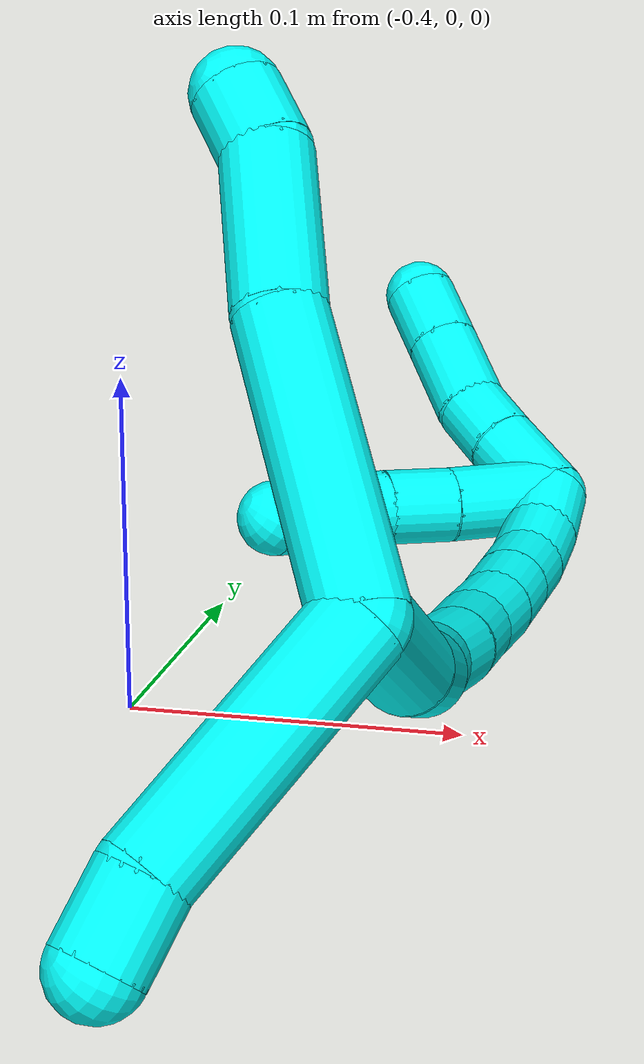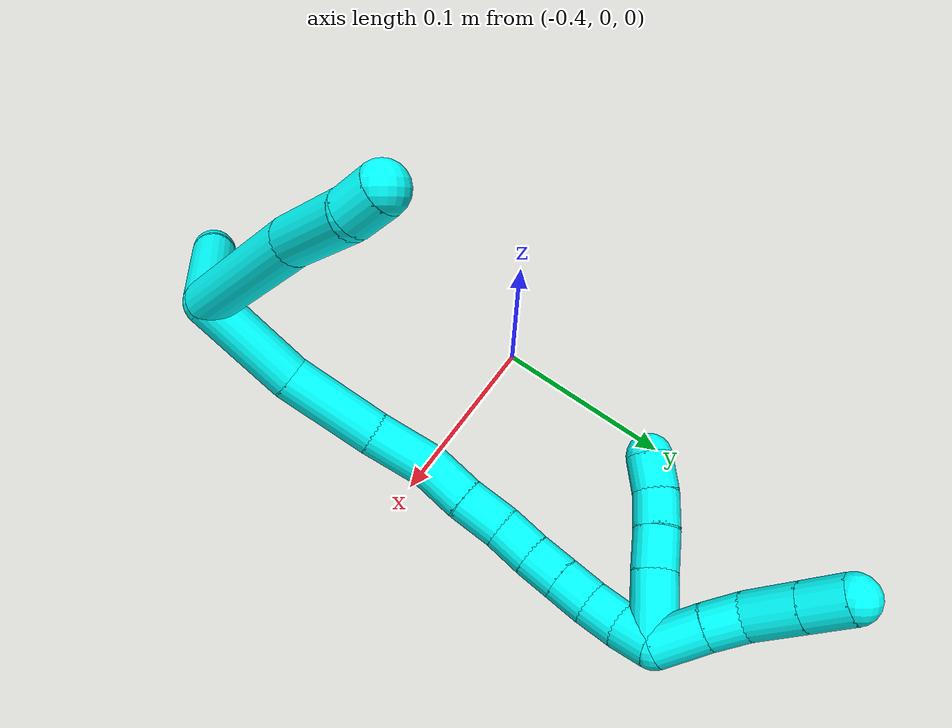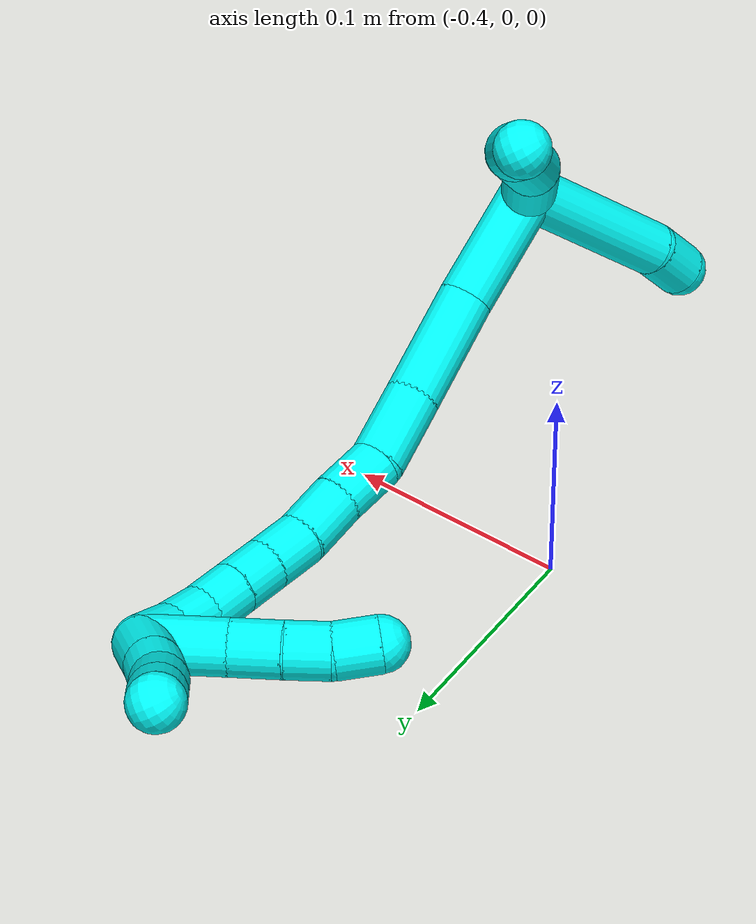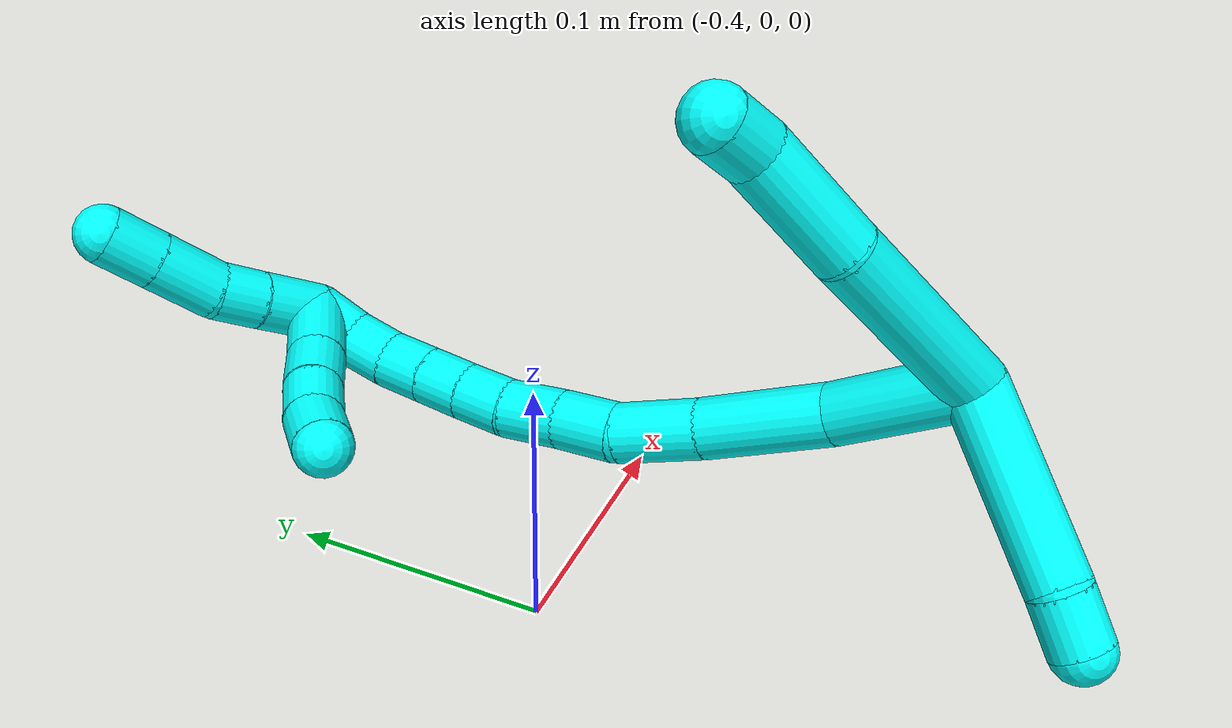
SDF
<sdf version="1.7">
 <world name="default">
  <model name="3">
   <static>0</static>
   <link name="3">
    <collision name="collision-cylinder-e_1_2_8">
     <pose>-0.01954 0.033205 0.014743 -1.15293 -0.493468 0.32461</pose>
     <geometry><cylinder><radius>0.0125</radius><length>0.082504</length></cylinder></geometry>
     <surface>
      <friction><ode><mu>1.16</mu><mu2>1.16</mu2><slip1>0</slip1><slip2>0</slip2></ode></friction>
      <contact><ode><kp>1e+06</kp><kd>1</kd><max_vel>0</max_vel><min_depth>0.001</min_depth></ode></contact>
     </surface>
    </collision>
    <visual name="visual-cylinder-e_1_2_8">
     <pose>-0.01954 0.033205 0.014743 -1.15293 -0.493468 0.32461</pose>
     <geometry><cylinder><radius>0.0125</radius><length>0.082504</length></cylinder></geometry>
     <material><ambient>0.003922 1 0.996078 1</ambient></material>
    </visual>
    <collision name="collision-cylinder-e_2_8_9">
     <pose>-0.049419 0.087174 0.034522 -1.33288 -0.450634 0.356702</pose>
     <geometry><cylinder><radius>0.0125</radius><length>0.047472</length></cylinder></geometry>
     <surface>
      <friction><ode><mu>1.16</mu><mu2>1.16</mu2><slip1>0</slip1><slip2>0</slip2></ode></friction>
      <contact><ode><kp>1e+06</kp><kd>1</kd><max_vel>0</max_vel><min_depth>0.001</min_depth></ode></contact>
     </surface>
    </collision>
    <visual name="visual-cylinder-e_2_8_9">
     <pose>-0.049419 0.087174 0.034522 -1.33288 -0.450634 0.356702</pose>
     <geometry><cylinder><radius>0.0125</radius><length>0.047472</length></cylinder></geometry>
     <material><ambient>0.003922 1 0.996078 1</ambient></material>
    </visual>
    <collision name="collision-cylinder-e_3_9_6">
     <pose>-0.065431 0.114843 0.04407 -0.99196 -0.602613 0.333193</pose>
     <geometry><cylinder><radius>0.0125</radius><length>0.020024</length></cylinder></geometry>
     <surface>
      <friction><ode><mu>1.16</mu><mu2>1.16</mu2><slip1>0</slip1><slip2>0</slip2></ode></friction>
      <contact><ode><kp>1e+06</kp><kd>1</kd><max_vel>0</max_vel><min_depth>0.001</min_depth></ode></contact>
     </surface>
    </collision>
    <visual name="visual-cylinder-e_3_9_6">
     <pose>-0.065431 0.114843 0.04407 -0.99196 -0.602613 0.333193</pose>
     <geometry><cylinder><radius>0.0125</radius><length>0.020024</length></cylinder></geometry>
     <material><ambient>0.003922 1 0.996078 1</ambient></material>
    </visual>
    <collision name="collision-cylinder-e_1_2_10">
     <pose>-0.002717 -0.036202 0.012964 1.22691 -0.070537 -0.049674</pose>
     <geometry><cylinder><radius>0.0125</radius><length>0.077097</length></cylinder></geometry>
     <surface>
      <friction><ode><mu>1.16</mu><mu2>1.16</mu2><slip1>0</slip1><slip2>0</slip2></ode></friction>
      <contact><ode><kp>1e+06</kp><kd>1</kd><max_vel>0</max_vel><min_depth>0.001</min_depth></ode></contact>
     </surface>
    </collision>
    <visual name="visual-cylinder-e_1_2_10">
     <pose>-0.002717 -0.036202 0.012964 1.22691 -0.070537 -0.049674</pose>
     <geometry><cylinder><radius>0.0125</radius><length>0.077097</length></cylinder></geometry>
     <material><ambient>0.003922 1 0.996078 1</ambient></material>
    </visual>
    <collision name="collision-cylinder-e_2_10_5">
     <pose>-0.005654 -0.083784 0.027173 1.46186 -0.01926 -0.017268</pose>
     <geometry><cylinder><radius>0.0125</radius><length>0.022903</length></cylinder></geometry>
     <surface>
      <friction><ode><mu>1.16</mu><mu2>1.16</mu2><slip1>0</slip1><slip2>0</slip2></ode></friction>
      <contact><ode><kp>1e+06</kp><kd>1</kd><max_vel>0</max_vel><min_depth>0.001</min_depth></ode></contact>
     </surface>
    </collision>
    <visual name="visual-cylinder-e_2_10_5">
     <pose>-0.005654 -0.083784 0.027173 1.46186 -0.01926 -0.017268</pose>
     <geometry><cylinder><radius>0.0125</radius><length>0.022903</length></cylinder></geometry>
     <material><ambient>0.003922 1 0.996078 1</ambient></material>
    </visual>
    <collision name="collision-cylinder-e_1_2_11">
     <pose>-0.020248 0.000561 -0.020168 -3.11377 -0.78717 3.07461</pose>
     <geometry><cylinder><radius>0.0125</radius><length>0.057168</length></cylinder></geometry>
     <surface>
      <friction><ode><mu>1.16</mu><mu2>1.16</mu2><slip1>0</slip1><slip2>0</slip2></ode></friction>
      <contact><ode><kp>1e+06</kp><kd>1</kd><max_vel>0</max_vel><min_depth>0.001</min_depth></ode></contact>
     </surface>
    </collision>
    <visual name="visual-cylinder-e_1_2_11">
     <pose>-0.020248 0.000561 -0.020168 -3.11377 -0.78717 3.07461</pose>
     <geometry><cylinder><radius>0.0125</radius><length>0.057168</length></cylinder></geometry>
     <material><ambient>0.003922 1 0.996078 1</ambient></material>
    </visual>
    <collision name="collision-cylinder-e_2_11_12">
     <pose>-0.061843 0.005003 -0.055981 -2.89846 -0.924063 2.66044</pose>
     <geometry><cylinder><radius>0.0125</radius><length>0.053497</length></cylinder></geometry>
     <surface>
      <friction><ode><mu>1.16</mu><mu2>1.16</mu2><slip1>0</slip1><slip2>0</slip2></ode></friction>
      <contact><ode><kp>1e+06</kp><kd>1</kd><max_vel>0</max_vel><min_depth>0.001</min_depth></ode></contact>
     </surface>
    </collision>
    <visual name="visual-cylinder-e_2_11_12">
     <pose>-0.061843 0.005003 -0.055981 -2.89846 -0.924063 2.66044</pose>
     <geometry><cylinder><radius>0.0125</radius><length>0.053497</length></cylinder></geometry>
     <material><ambient>0.003922 1 0.996078 1</ambient></material>
    </visual>
    <collision name="collision-cylinder-e_3_12_13">
     <pose>-0.097875 0.012804 -0.081148 -2.75104 -0.959232 2.4148</pose>
     <geometry><cylinder><radius>0.0125</radius><length>0.035874</length></cylinder></geometry>
     <surface>
      <friction><ode><mu>1.16</mu><mu2>1.16</mu2><slip1>0</slip1><slip2>0</slip2></ode></friction>
      <contact><ode><kp>1e+06</kp><kd>1</kd><max_vel>0</max_vel><min_depth>0.001</min_depth></ode></contact>
     </surface>
    </collision>
    <visual name="visual-cylinder-e_3_12_13">
     <pose>-0.097875 0.012804 -0.081148 -2.75104 -0.959232 2.4148</pose>
     <geometry><cylinder><radius>0.0125</radius><length>0.035874</length></cylinder></geometry>
     <material><ambient>0.003922 1 0.996078 1</ambient></material>
    </visual>
    <collision name="collision-cylinder-e_4_13_14">
     <pose>-0.120864 0.022153 -0.099146 -2.5719 -0.689778 1.77387</pose>
     <geometry><cylinder><radius>0.0125</radius><length>0.026095</length></cylinder></geometry>
     <surface>
      <friction><ode><mu>1.16</mu><mu2>1.16</mu2><slip1>0</slip1><slip2>0</slip2></ode></friction>
      <contact><ode><kp>1e+06</kp><kd>1</kd><max_vel>0</max_vel><min_depth>0.001</min_depth></ode></contact>
     </surface>
    </collision>
    <visual name="visual-cylinder-e_4_13_14">
     <pose>-0.120864 0.022153 -0.099146 -2.5719 -0.689778 1.77387</pose>
     <geometry><cylinder><radius>0.0125</radius><length>0.026095</length></cylinder></geometry>
     <material><ambient>0.003922 1 0.996078 1</ambient></material>
    </visual>
    <collision name="collision-cylinder-e_5_14_15">
     <pose>-0.138216 0.033002 -0.11502 -2.50935 -0.778639 1.79543</pose>
     <geometry><cylinder><radius>0.0125</radius><length>0.025768</length></cylinder></geometry>
     <surface>
      <friction><ode><mu>1.16</mu><mu2>1.16</mu2><slip1>0</slip1><slip2>0</slip2></ode></friction>
      <contact><ode><kp>1e+06</kp><kd>1</kd><max_vel>0</max_vel><min_depth>0.001</min_depth></ode></contact>
     </surface>
    </collision>
    <visual name="visual-cylinder-e_5_14_15">
     <pose>-0.138216 0.033002 -0.11502 -2.50935 -0.778639 1.79543</pose>
     <geometry><cylinder><radius>0.0125</radius><length>0.025768</length></cylinder></geometry>
     <material><ambient>0.003922 1 0.996078 1</ambient></material>
    </visual>
    <collision name="collision-cylinder-e_6_15_16">
     <pose>-0.153663 0.044194 -0.128919 -2.41544 -0.634588 1.42555</pose>
     <geometry><cylinder><radius>0.0125</radius><length>0.021587</length></cylinder></geometry>
     <surface>
      <friction><ode><mu>1.16</mu><mu2>1.16</mu2><slip1>0</slip1><slip2>0</slip2></ode></friction>
      <contact><ode><kp>1e+06</kp><kd>1</kd><max_vel>0</max_vel><min_depth>0.001</min_depth></ode></contact>
     </surface>
    </collision>
    <visual name="visual-cylinder-e_6_15_16">
     <pose>-0.153663 0.044194 -0.128919 -2.41544 -0.634588 1.42555</pose>
     <geometry><cylinder><radius>0.0125</radius><length>0.021587</length></cylinder></geometry>
     <material><ambient>0.003922 1 0.996078 1</ambient></material>
    </visual>
    <collision name="collision-cylinder-e_7_16_17">
     <pose>-0.166156 0.055774 -0.140817 -2.31959 -0.655221 1.32461</pose>
     <geometry><cylinder><radius>0.0125</radius><length>0.020002</length></cylinder></geometry>
     <surface>
      <friction><ode><mu>1.16</mu><mu2>1.16</mu2><slip1>0</slip1><slip2>0</slip2></ode></friction>
      <contact><ode><kp>1e+06</kp><kd>1</kd><max_vel>0</max_vel><min_depth>0.001</min_depth></ode></contact>
     </surface>
    </collision>
    <visual name="visual-cylinder-e_7_16_17">
     <pose>-0.166156 0.055774 -0.140817 -2.31959 -0.655221 1.32461</pose>
     <geometry><cylinder><radius>0.0125</radius><length>0.020002</length></cylinder></geometry>
     <material><ambient>0.003922 1 0.996078 1</ambient></material>
    </visual>
    <collision name="collision-cylinder-e_8_17_18">
     <pose>-0.178345 0.067394 -0.151612 -2.31924 -0.655246 1.32419</pose>
     <geometry><cylinder><radius>0.0125</radius><length>0.020003</length></cylinder></geometry>
     <surface>
      <friction><ode><mu>1.16</mu><mu2>1.16</mu2><slip1>0</slip1><slip2>0</slip2></ode></friction>
      <contact><ode><kp>1e+06</kp><kd>1</kd><max_vel>0</max_vel><min_depth>0.001</min_depth></ode></contact>
     </surface>
    </collision>
    <visual name="visual-cylinder-e_8_17_18">
     <pose>-0.178345 0.067394 -0.151612 -2.31924 -0.655246 1.32419</pose>
     <geometry><cylinder><radius>0.0125</radius><length>0.020003</length></cylinder></geometry>
     <material><ambient>0.003922 1 0.996078 1</ambient></material>
    </visual>
    <collision name="collision-cylinder-e_9_18_19">
     <pose>-0.190143 0.080272 -0.161195 -2.10565 -0.606932 1.0049</pose>
     <geometry><cylinder><radius>0.0125</radius><length>0.020001</length></cylinder></geometry>
     <surface>
      <friction><ode><mu>1.16</mu><mu2>1.16</mu2><slip1>0</slip1><slip2>0</slip2></ode></friction>
      <contact><ode><kp>1e+06</kp><kd>1</kd><max_vel>0</max_vel><min_depth>0.001</min_depth></ode></contact>
     </surface>
    </collision>
    <visual name="visual-cylinder-e_9_18_19">
     <pose>-0.190143 0.080272 -0.161195 -2.10565 -0.606932 1.0049</pose>
     <geometry><cylinder><radius>0.0125</radius><length>0.020001</length></cylinder></geometry>
     <material><ambient>0.003922 1 0.996078 1</ambient></material>
    </visual>
    <collision name="collision-cylinder-e_10_19_1">
     <pose>-0.201002 0.095501 -0.167999 -1.88111 -0.541492 0.727148</pose>
     <geometry><cylinder><radius>0.0125</radius><length>0.020004</length></cylinder></geometry>
     <surface>
      <friction><ode><mu>1.16</mu><mu2>1.16</mu2><slip1>0</slip1><slip2>0</slip2></ode></friction>
      <contact><ode><kp>1e+06</kp><kd>1</kd><max_vel>0</max_vel><min_depth>0.001</min_depth></ode></contact>
     </surface>
    </collision>
    <visual name="visual-cylinder-e_10_19_1">
     <pose>-0.201002 0.095501 -0.167999 -1.88111 -0.541492 0.727148</pose>
     <geometry><cylinder><radius>0.0125</radius><length>0.020004</length></cylinder></geometry>
     <material><ambient>0.003922 1 0.996078 1</ambient></material>
    </visual>
    <collision name="collision-cylinder-e_1_1_20">
     <pose>-0.210153 0.095023 -0.154885 0.502207 -0.219082 -0.056409</pose>
     <geometry><cylinder><radius>0.0125</radius><length>0.036775</length></cylinder></geometry>
     <surface>
      <friction><ode><mu>1.16</mu><mu2>1.16</mu2><slip1>0</slip1><slip2>0</slip2></ode></friction>
      <contact><ode><kp>1e+06</kp><kd>1</kd><max_vel>0</max_vel><min_depth>0.001</min_depth></ode></contact>
     </surface>
    </collision>
    <visual name="visual-cylinder-e_1_1_20">
     <pose>-0.210153 0.095023 -0.154885 0.502207 -0.219082 -0.056409</pose>
     <geometry><cylinder><radius>0.0125</radius><length>0.036775</length></cylinder></geometry>
     <material><ambient>0.003922 1 0.996078 1</ambient></material>
    </visual>
    <collision name="collision-cylinder-e_2_20_21">
     <pose>-0.216941 0.081513 -0.129235 0.456479 -0.247479 -0.057765</pose>
     <geometry><cylinder><radius>0.0125</radius><length>0.022793</length></cylinder></geometry>
     <surface>
      <friction><ode><mu>1.16</mu><mu2>1.16</mu2><slip1>0</slip1><slip2>0</slip2></ode></friction>
      <contact><ode><kp>1e+06</kp><kd>1</kd><max_vel>0</max_vel><min_depth>0.001</min_depth></ode></contact>
     </surface>
    </collision>
    <visual name="visual-cylinder-e_2_20_21">
     <pose>-0.216941 0.081513 -0.129235 0.456479 -0.247479 -0.057765</pose>
     <geometry><cylinder><radius>0.0125</radius><length>0.022793</length></cylinder></geometry>
     <material><ambient>0.003922 1 0.996078 1</ambient></material>
    </visual>
    <collision name="collision-cylinder-e_3_21_22">
     <pose>-0.22165 0.071731 -0.110764 0.521326 -0.191931 -0.05134</pose>
     <geometry><cylinder><radius>0.0125</radius><length>0.020095</length></cylinder></geometry>
     <surface>
      <friction><ode><mu>1.16</mu><mu2>1.16</mu2><slip1>0</slip1><slip2>0</slip2></ode></friction>
      <contact><ode><kp>1e+06</kp><kd>1</kd><max_vel>0</max_vel><min_depth>0.001</min_depth></ode></contact>
     </surface>
    </collision>
    <visual name="visual-cylinder-e_3_21_22">
     <pose>-0.22165 0.071731 -0.110764 0.521326 -0.191931 -0.05134</pose>
     <geometry><cylinder><radius>0.0125</radius><length>0.020095</length></cylinder></geometry>
     <material><ambient>0.003922 1 0.996078 1</ambient></material>
    </visual>
    <collision name="collision-cylinder-e_4_22_4">
     <pose>-0.223677 0.062154 -0.093177 0.476645 -0.01089 -0.002646</pose>
     <geometry><cylinder><radius>0.0125</radius><length>0.020337</length></cylinder></geometry>
     <surface>
      <friction><ode><mu>1.16</mu><mu2>1.16</mu2><slip1>0</slip1><slip2>0</slip2></ode></friction>
      <contact><ode><kp>1e+06</kp><kd>1</kd><max_vel>0</max_vel><min_depth>0.001</min_depth></ode></contact>
     </surface>
    </collision>
    <visual name="visual-cylinder-e_4_22_4">
     <pose>-0.223677 0.062154 -0.093177 0.476645 -0.01089 -0.002646</pose>
     <geometry><cylinder><radius>0.0125</radius><length>0.020337</length></cylinder></geometry>
     <material><ambient>0.003922 1 0.996078 1</ambient></material>
    </visual>
    <collision name="collision-cylinder-e_1_1_23">
     <pose>-0.216665 0.110774 -0.164482 -0.858973 -0.841432 0.40425</pose>
     <geometry><cylinder><radius>0.0125</radius><length>0.028186</length></cylinder></geometry>
     <surface>
      <friction><ode><mu>1.16</mu><mu2>1.16</mu2><slip1>0</slip1><slip2>0</slip2></ode></friction>
      <contact><ode><kp>1e+06</kp><kd>1</kd><max_vel>0</max_vel><min_depth>0.001</min_depth></ode></contact>
     </surface>
    </collision>
    <visual name="visual-cylinder-e_1_1_23">
     <pose>-0.216665 0.110774 -0.164482 -0.858973 -0.841432 0.40425</pose>
     <geometry><cylinder><radius>0.0125</radius><length>0.028186</length></cylinder></geometry>
     <material><ambient>0.003922 1 0.996078 1</ambient></material>
    </visual>
    <collision name="collision-cylinder-e_2_23_24">
     <pose>-0.234761 0.12318 -0.154489 -0.941085 -0.858576 0.457526</pose>
     <geometry><cylinder><radius>0.0125</radius><length>0.020051</length></cylinder></geometry>
     <surface>
      <friction><ode><mu>1.16</mu><mu2>1.16</mu2><slip1>0</slip1><slip2>0</slip2></ode></friction>
      <contact><ode><kp>1e+06</kp><kd>1</kd><max_vel>0</max_vel><min_depth>0.001</min_depth></ode></contact>
     </surface>
    </collision>
    <visual name="visual-cylinder-e_2_23_24">
     <pose>-0.234761 0.12318 -0.154489 -0.941085 -0.858576 0.457526</pose>
     <geometry><cylinder><radius>0.0125</radius><length>0.020051</length></cylinder></geometry>
     <material><ambient>0.003922 1 0.996078 1</ambient></material>
    </visual>
    <collision name="collision-cylinder-e_3_24_25">
     <pose>-0.25108 0.138653 -0.145658 -1.11639 -0.656649 0.419187</pose>
     <geometry><cylinder><radius>0.0125</radius><length>0.028603</length></cylinder></geometry>
     <surface>
      <friction><ode><mu>1.16</mu><mu2>1.16</mu2><slip1>0</slip1><slip2>0</slip2></ode></friction>
      <contact><ode><kp>1e+06</kp><kd>1</kd><max_vel>0</max_vel><min_depth>0.001</min_depth></ode></contact>
     </surface>
    </collision>
    <visual name="visual-cylinder-e_3_24_25">
     <pose>-0.25108 0.138653 -0.145658 -1.11639 -0.656649 0.419187</pose>
     <geometry><cylinder><radius>0.0125</radius><length>0.028603</length></cylinder></geometry>
     <material><ambient>0.003922 1 0.996078 1</ambient></material>
    </visual>
    <collision name="collision-cylinder-e_4_25_3">
     <pose>-0.26688 0.15706 -0.136638 -1.11359 -0.656728 0.417972</pose>
     <geometry><cylinder><radius>0.0125</radius><length>0.02316</length></cylinder></geometry>
     <surface>
      <friction><ode><mu>1.16</mu><mu2>1.16</mu2><slip1>0</slip1><slip2>0</slip2></ode></friction>
      <contact><ode><kp>1e+06</kp><kd>1</kd><max_vel>0</max_vel><min_depth>0.001</min_depth></ode></contact>
     </surface>
    </collision>
    <visual name="visual-cylinder-e_4_25_3">
     <pose>-0.26688 0.15706 -0.136638 -1.11359 -0.656728 0.417972</pose>
     <geometry><cylinder><radius>0.0125</radius><length>0.02316</length></cylinder></geometry>
     <material><ambient>0.003922 1 0.996078 1</ambient></material>
    </visual>
    <collision name="collision-sphere-3">
     <pose>-0.27395 0.165289 -0.132589 0 -0 0</pose>
     <geometry><sphere><radius>0.0125</radius></sphere></geometry>
     <surface>
      <friction><ode><mu>1.16</mu><mu2>1.16</mu2><slip1>0</slip1><slip2>0</slip2></ode></friction>
      <contact><ode><kp>1e+06</kp><kd>1</kd><max_vel>0</max_vel><min_depth>0.001</min_depth></ode></contact>
     </surface>
    </collision>
    <visual name="visual-sphere-3">
     <pose>-0.27395 0.165289 -0.132589 0 -0 0</pose>
     <geometry><sphere><radius>0.0125</radius></sphere></geometry>
     <material><ambient>0.003922 1 0.996078 1</ambient></material>
    </visual>
    <collision name="collision-sphere-25">
     <pose>-0.25981 0.148831 -0.140687 0 -0 0</pose>
     <geometry><sphere><radius>0.0125</radius></sphere></geometry>
     <surface>
      <friction><ode><mu>1.16</mu><mu2>1.16</mu2><slip1>0</slip1><slip2>0</slip2></ode></friction>
      <contact><ode><kp>1e+06</kp><kd>1</kd><max_vel>0</max_vel><min_depth>0.001</min_depth></ode></contact>
     </surface>
    </collision>
    <visual name="visual-sphere-25">
     <pose>-0.25981 0.148831 -0.140687 0 -0 0</pose>
     <geometry><sphere><radius>0.0125</radius></sphere></geometry>
     <material><ambient>0.003922 1 0.996078 1</ambient></material>
    </visual>
    <collision name="collision-sphere-24">
     <pose>-0.242349 0.128475 -0.15063 0 -0 0</pose>
     <geometry><sphere><radius>0.0125</radius></sphere></geometry>
     <surface>
      <friction><ode><mu>1.16</mu><mu2>1.16</mu2><slip1>0</slip1><slip2>0</slip2></ode></friction>
      <contact><ode><kp>1e+06</kp><kd>1</kd><max_vel>0</max_vel><min_depth>0.001</min_depth></ode></contact>
     </surface>
    </collision>
    <visual name="visual-sphere-24">
     <pose>-0.242349 0.128475 -0.15063 0 -0 0</pose>
     <geometry><sphere><radius>0.0125</radius></sphere></geometry>
     <material><ambient>0.003922 1 0.996078 1</ambient></material>
    </visual>
    <collision name="collision-sphere-23">
     <pose>-0.227173 0.117885 -0.158347 0 -0 0</pose>
     <geometry><sphere><radius>0.0125</radius></sphere></geometry>
     <surface>
      <friction><ode><mu>1.16</mu><mu2>1.16</mu2><slip1>0</slip1><slip2>0</slip2></ode></friction>
      <contact><ode><kp>1e+06</kp><kd>1</kd><max_vel>0</max_vel><min_depth>0.001</min_depth></ode></contact>
     </surface>
    </collision>
    <visual name="visual-sphere-23">
     <pose>-0.227173 0.117885 -0.158347 0 -0 0</pose>
     <geometry><sphere><radius>0.0125</radius></sphere></geometry>
     <material><ambient>0.003922 1 0.996078 1</ambient></material>
    </visual>
    <collision name="collision-sphere-4">
     <pose>-0.223788 0.057489 -0.084142 0 -0 0</pose>
     <geometry><sphere><radius>0.0125</radius></sphere></geometry>
     <surface>
      <friction><ode><mu>1.16</mu><mu2>1.16</mu2><slip1>0</slip1><slip2>0</slip2></ode></friction>
      <contact><ode><kp>1e+06</kp><kd>1</kd><max_vel>0</max_vel><min_depth>0.001</min_depth></ode></contact>
     </surface>
    </collision>
    <visual name="visual-sphere-4">
     <pose>-0.223788 0.057489 -0.084142 0 -0 0</pose>
     <geometry><sphere><radius>0.0125</radius></sphere></geometry>
     <material><ambient>0.003922 1 0.996078 1</ambient></material>
    </visual>
    <collision name="collision-sphere-22">
     <pose>-0.223566 0.066819 -0.102211 0 -0 0</pose>
     <geometry><sphere><radius>0.0125</radius></sphere></geometry>
     <surface>
      <friction><ode><mu>1.16</mu><mu2>1.16</mu2><slip1>0</slip1><slip2>0</slip2></ode></friction>
      <contact><ode><kp>1e+06</kp><kd>1</kd><max_vel>0</max_vel><min_depth>0.001</min_depth></ode></contact>
     </surface>
    </collision>
    <visual name="visual-sphere-22">
     <pose>-0.223566 0.066819 -0.102211 0 -0 0</pose>
     <geometry><sphere><radius>0.0125</radius></sphere></geometry>
     <material><ambient>0.003922 1 0.996078 1</ambient></material>
    </visual>
    <collision name="collision-sphere-21">
     <pose>-0.219733 0.076643 -0.119317 0 -0 0</pose>
     <geometry><sphere><radius>0.0125</radius></sphere></geometry>
     <surface>
      <friction><ode><mu>1.16</mu><mu2>1.16</mu2><slip1>0</slip1><slip2>0</slip2></ode></friction>
      <contact><ode><kp>1e+06</kp><kd>1</kd><max_vel>0</max_vel><min_depth>0.001</min_depth></ode></contact>
     </surface>
    </collision>
    <visual name="visual-sphere-21">
     <pose>-0.219733 0.076643 -0.119317 0 -0 0</pose>
     <geometry><sphere><radius>0.0125</radius></sphere></geometry>
     <material><ambient>0.003922 1 0.996078 1</ambient></material>
    </visual>
    <collision name="collision-sphere-20">
     <pose>-0.21415 0.086384 -0.139153 0 -0 0</pose>
     <geometry><sphere><radius>0.0125</radius></sphere></geometry>
     <surface>
      <friction><ode><mu>1.16</mu><mu2>1.16</mu2><slip1>0</slip1><slip2>0</slip2></ode></friction>
      <contact><ode><kp>1e+06</kp><kd>1</kd><max_vel>0</max_vel><min_depth>0.001</min_depth></ode></contact>
     </surface>
    </collision>
    <visual name="visual-sphere-20">
     <pose>-0.21415 0.086384 -0.139153 0 -0 0</pose>
     <geometry><sphere><radius>0.0125</radius></sphere></geometry>
     <material><ambient>0.003922 1 0.996078 1</ambient></material>
    </visual>
    <collision name="collision-sphere-5">
     <pose>-0.005875 -0.095166 0.028418 0 -0 0</pose>
     <geometry><sphere><radius>0.0125</radius></sphere></geometry>
     <surface>
      <friction><ode><mu>1.16</mu><mu2>1.16</mu2><slip1>0</slip1><slip2>0</slip2></ode></friction>
      <contact><ode><kp>1e+06</kp><kd>1</kd><max_vel>0</max_vel><min_depth>0.001</min_depth></ode></contact>
     </surface>
    </collision>
    <visual name="visual-sphere-5">
     <pose>-0.005875 -0.095166 0.028418 0 -0 0</pose>
     <geometry><sphere><radius>0.0125</radius></sphere></geometry>
     <material><ambient>0.003922 1 0.996078 1</ambient></material>
    </visual>
    <collision name="collision-sphere-10">
     <pose>-0.005434 -0.072403 0.025928 0 -0 0</pose>
     <geometry><sphere><radius>0.0125</radius></sphere></geometry>
     <surface>
      <friction><ode><mu>1.16</mu><mu2>1.16</mu2><slip1>0</slip1><slip2>0</slip2></ode></friction>
      <contact><ode><kp>1e+06</kp><kd>1</kd><max_vel>0</max_vel><min_depth>0.001</min_depth></ode></contact>
     </surface>
    </collision>
    <visual name="visual-sphere-10">
     <pose>-0.005434 -0.072403 0.025928 0 -0 0</pose>
     <geometry><sphere><radius>0.0125</radius></sphere></geometry>
     <material><ambient>0.003922 1 0.996078 1</ambient></material>
    </visual>
    <collision name="collision-sphere-6">
     <pose>-0.071106 0.121748 0.048582 0 -0 0</pose>
     <geometry><sphere><radius>0.0125</radius></sphere></geometry>
     <surface>
      <friction><ode><mu>1.16</mu><mu2>1.16</mu2><slip1>0</slip1><slip2>0</slip2></ode></friction>
      <contact><ode><kp>1e+06</kp><kd>1</kd><max_vel>0</max_vel><min_depth>0.001</min_depth></ode></contact>
     </surface>
    </collision>
    <visual name="visual-sphere-6">
     <pose>-0.071106 0.121748 0.048582 0 -0 0</pose>
     <geometry><sphere><radius>0.0125</radius></sphere></geometry>
     <material><ambient>0.003922 1 0.996078 1</ambient></material>
    </visual>
    <collision name="collision-sphere-9">
     <pose>-0.059757 0.107938 0.039558 0 -0 0</pose>
     <geometry><sphere><radius>0.0125</radius></sphere></geometry>
     <surface>
      <friction><ode><mu>1.16</mu><mu2>1.16</mu2><slip1>0</slip1><slip2>0</slip2></ode></friction>
      <contact><ode><kp>1e+06</kp><kd>1</kd><max_vel>0</max_vel><min_depth>0.001</min_depth></ode></contact>
     </surface>
    </collision>
    <visual name="visual-sphere-9">
     <pose>-0.059757 0.107938 0.039558 0 -0 0</pose>
     <geometry><sphere><radius>0.0125</radius></sphere></geometry>
     <material><ambient>0.003922 1 0.996078 1</ambient></material>
    </visual>
    <collision name="collision-sphere-2">
     <geometry><sphere><radius>0.0125</radius></sphere></geometry>
     <surface>
      <friction><ode><mu>1.16</mu><mu2>1.16</mu2><slip1>0</slip1><slip2>0</slip2></ode></friction>
      <contact><ode><kp>1e+06</kp><kd>1</kd><max_vel>0</max_vel><min_depth>0.001</min_depth></ode></contact>
     </surface>
    </collision>
    <visual name="visual-sphere-2">
     <geometry><sphere><radius>0.0125</radius></sphere></geometry>
     <material><ambient>0.003922 1 0.996078 1</ambient></material>
    </visual>
    <collision name="collision-sphere-19">
     <pose>-0.195847 0.087339 -0.165382 0 -0 0</pose>
     <geometry><sphere><radius>0.0125</radius></sphere></geometry>
     <surface>
      <friction><ode><mu>1.16</mu><mu2>1.16</mu2><slip1>0</slip1><slip2>0</slip2></ode></friction>
      <contact><ode><kp>1e+06</kp><kd>1</kd><max_vel>0</max_vel><min_depth>0.001</min_depth></ode></contact>
     </surface>
    </collision>
    <visual name="visual-sphere-19">
     <pose>-0.195847 0.087339 -0.165382 0 -0 0</pose>
     <geometry><sphere><radius>0.0125</radius></sphere></geometry>
     <material><ambient>0.003922 1 0.996078 1</ambient></material>
    </visual>
    <collision name="collision-sphere-8">
     <pose>-0.039081 0.066409 0.029486 0 -0 0</pose>
     <geometry><sphere><radius>0.0125</radius></sphere></geometry>
     <surface>
      <friction><ode><mu>1.16</mu><mu2>1.16</mu2><slip1>0</slip1><slip2>0</slip2></ode></friction>
      <contact><ode><kp>1e+06</kp><kd>1</kd><max_vel>0</max_vel><min_depth>0.001</min_depth></ode></contact>
     </surface>
    </collision>
    <visual name="visual-sphere-8">
     <pose>-0.039081 0.066409 0.029486 0 -0 0</pose>
     <geometry><sphere><radius>0.0125</radius></sphere></geometry>
     <material><ambient>0.003922 1 0.996078 1</ambient></material>
    </visual>
    <collision name="collision-sphere-11">
     <pose>-0.040496 0.001123 -0.040337 0 -0 0</pose>
     <geometry><sphere><radius>0.0125</radius></sphere></geometry>
     <surface>
      <friction><ode><mu>1.16</mu><mu2>1.16</mu2><slip1>0</slip1><slip2>0</slip2></ode></friction>
      <contact><ode><kp>1e+06</kp><kd>1</kd><max_vel>0</max_vel><min_depth>0.001</min_depth></ode></contact>
     </surface>
    </collision>
    <visual name="visual-sphere-11">
     <pose>-0.040496 0.001123 -0.040337 0 -0 0</pose>
     <geometry><sphere><radius>0.0125</radius></sphere></geometry>
     <material><ambient>0.003922 1 0.996078 1</ambient></material>
    </visual>
    <collision name="collision-sphere-12">
     <pose>-0.08319 0.008883 -0.071625 0 -0 0</pose>
     <geometry><sphere><radius>0.0125</radius></sphere></geometry>
     <surface>
      <friction><ode><mu>1.16</mu><mu2>1.16</mu2><slip1>0</slip1><slip2>0</slip2></ode></friction>
      <contact><ode><kp>1e+06</kp><kd>1</kd><max_vel>0</max_vel><min_depth>0.001</min_depth></ode></contact>
     </surface>
    </collision>
    <visual name="visual-sphere-12">
     <pose>-0.08319 0.008883 -0.071625 0 -0 0</pose>
     <geometry><sphere><radius>0.0125</radius></sphere></geometry>
     <material><ambient>0.003922 1 0.996078 1</ambient></material>
    </visual>
    <collision name="collision-sphere-13">
     <pose>-0.112561 0.016725 -0.090671 0 -0 0</pose>
     <geometry><sphere><radius>0.0125</radius></sphere></geometry>
     <surface>
      <friction><ode><mu>1.16</mu><mu2>1.16</mu2><slip1>0</slip1><slip2>0</slip2></ode></friction>
      <contact><ode><kp>1e+06</kp><kd>1</kd><max_vel>0</max_vel><min_depth>0.001</min_depth></ode></contact>
     </surface>
    </collision>
    <visual name="visual-sphere-13">
     <pose>-0.112561 0.016725 -0.090671 0 -0 0</pose>
     <geometry><sphere><radius>0.0125</radius></sphere></geometry>
     <material><ambient>0.003922 1 0.996078 1</ambient></material>
    </visual>
    <collision name="collision-sphere-14">
     <pose>-0.129167 0.027582 -0.107622 0 -0 0</pose>
     <geometry><sphere><radius>0.0125</radius></sphere></geometry>
     <surface>
      <friction><ode><mu>1.16</mu><mu2>1.16</mu2><slip1>0</slip1><slip2>0</slip2></ode></friction>
      <contact><ode><kp>1e+06</kp><kd>1</kd><max_vel>0</max_vel><min_depth>0.001</min_depth></ode></contact>
     </surface>
    </collision>
    <visual name="visual-sphere-14">
     <pose>-0.129167 0.027582 -0.107622 0 -0 0</pose>
     <geometry><sphere><radius>0.0125</radius></sphere></geometry>
     <material><ambient>0.003922 1 0.996078 1</ambient></material>
    </visual>
    <collision name="collision-sphere-15">
     <pose>-0.147265 0.038422 -0.122419 0 -0 0</pose>
     <geometry><sphere><radius>0.0125</radius></sphere></geometry>
     <surface>
      <friction><ode><mu>1.16</mu><mu2>1.16</mu2><slip1>0</slip1><slip2>0</slip2></ode></friction>
      <contact><ode><kp>1e+06</kp><kd>1</kd><max_vel>0</max_vel><min_depth>0.001</min_depth></ode></contact>
     </surface>
    </collision>
    <visual name="visual-sphere-15">
     <pose>-0.147265 0.038422 -0.122419 0 -0 0</pose>
     <geometry><sphere><radius>0.0125</radius></sphere></geometry>
     <material><ambient>0.003922 1 0.996078 1</ambient></material>
    </visual>
    <collision name="collision-sphere-16">
     <pose>-0.160062 0.049965 -0.135418 0 -0 0</pose>
     <geometry><sphere><radius>0.0125</radius></sphere></geometry>
     <surface>
      <friction><ode><mu>1.16</mu><mu2>1.16</mu2><slip1>0</slip1><slip2>0</slip2></ode></friction>
      <contact><ode><kp>1e+06</kp><kd>1</kd><max_vel>0</max_vel><min_depth>0.001</min_depth></ode></contact>
     </surface>
    </collision>
    <visual name="visual-sphere-16">
     <pose>-0.160062 0.049965 -0.135418 0 -0 0</pose>
     <geometry><sphere><radius>0.0125</radius></sphere></geometry>
     <material><ambient>0.003922 1 0.996078 1</ambient></material>
    </visual>
    <collision name="collision-sphere-17">
     <pose>-0.172251 0.061583 -0.146215 0 -0 0</pose>
     <geometry><sphere><radius>0.0125</radius></sphere></geometry>
     <surface>
      <friction><ode><mu>1.16</mu><mu2>1.16</mu2><slip1>0</slip1><slip2>0</slip2></ode></friction>
      <contact><ode><kp>1e+06</kp><kd>1</kd><max_vel>0</max_vel><min_depth>0.001</min_depth></ode></contact>
     </surface>
    </collision>
    <visual name="visual-sphere-17">
     <pose>-0.172251 0.061583 -0.146215 0 -0 0</pose>
     <geometry><sphere><radius>0.0125</radius></sphere></geometry>
     <material><ambient>0.003922 1 0.996078 1</ambient></material>
    </visual>
    <collision name="collision-sphere-18">
     <pose>-0.184439 0.073205 -0.157008 0 -0 0</pose>
     <geometry><sphere><radius>0.0125</radius></sphere></geometry>
     <surface>
      <friction><ode><mu>1.16</mu><mu2>1.16</mu2><slip1>0</slip1><slip2>0</slip2></ode></friction>
      <contact><ode><kp>1e+06</kp><kd>1</kd><max_vel>0</max_vel><min_depth>0.001</min_depth></ode></contact>
     </surface>
    </collision>
    <visual name="visual-sphere-18">
     <pose>-0.184439 0.073205 -0.157008 0 -0 0</pose>
     <geometry><sphere><radius>0.0125</radius></sphere></geometry>
     <material><ambient>0.003922 1 0.996078 1</ambient></material>
    </visual>
    <collision name="collision-sphere-1">
     <pose>-0.206157 0.103663 -0.170616 0 -0 0</pose>
     <geometry><sphere><radius>0.0125</radius></sphere></geometry>
     <surface>
      <friction><ode><mu>1.16</mu><mu2>1.16</mu2><slip1>0</slip1><slip2>0</slip2></ode></friction>
      <contact><ode><kp>1e+06</kp><kd>1</kd><max_vel>0</max_vel><min_depth>0.001</min_depth></ode></contact>
     </surface>
    </collision>
    <visual name="visual-sphere-1">
     <pose>-0.206157 0.103663 -0.170616 0 -0 0</pose>
     <geometry><sphere><radius>0.0125</radius></sphere></geometry>
     <material><ambient>0.003922 1 0.996078 1</ambient></material>
    </visual>
    <inertial>
     <pose>-0.112246 0.046456 -0.067059 0 -0 0</pose>
     <mass>0.75</mass>
     <inertia><ixx>9.5e-05</ixx><ixy>0</ixy><ixz>0</ixz><iyy>0.000148</iyy><iyz>0</iyz><izz>5.8e-05</izz></inertia>
    </inertial>
   </link>
   <pose>-0.300533 -0.126885 0.076818 1.01326 -0.225878 -0.791836</pose>
  </model>
 </world>
</sdf>
